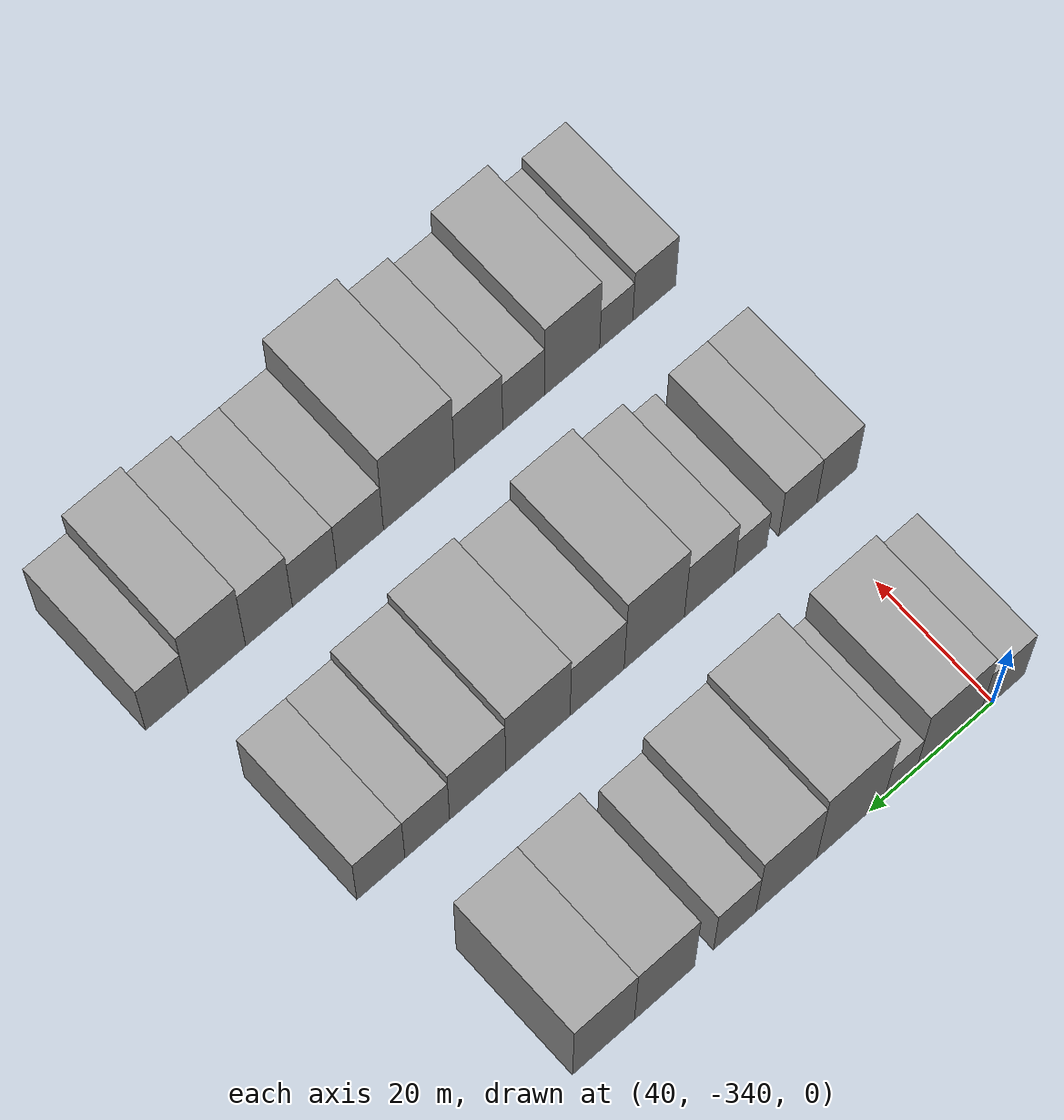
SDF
<sdf version="1.6">
 <world name="default">
  <model name="building_1">
   <static>1</static>
   <pose>50.0000 -341.4122 0 0.000000 0.000000 0.000000</pose>
   <link name="link">
    <pose>0 0 7.50 0 0 0</pose>
    <collision name="collision"><geometry><box><size>20.0000 7.1757 15.0000</size></box></geometry></collision>
    <visual name="visual">
     <cast_shadows>0</cast_shadows>
     <geometry><box><size>20.0000 7.1757 15.0000</size></box></geometry>
     <material>
      <script>
       <uri>model://grey_wall/materials/scripts</uri>
       <uri>model://grey_wall/materials/textures</uri>
       <name>vrc/grey_wall</name>
      </script>
     </material>
    </visual>
   </link>
  </model>
  <model name="building_2">
   <static>1</static>
   <pose>50.0000 -332.6353 0 0.000000 0.000000 0.000000</pose>
   <link name="link">
    <pose>0 0 10.50 0 0 0</pose>
    <collision name="collision"><geometry><box><size>20.0000 10.3781 21.0000</size></box></geometry></collision>
    <visual name="visual">
     <cast_shadows>0</cast_shadows>
     <geometry><box><size>20.0000 10.3781 21.0000</size></box></geometry>
     <material>
      <script>
       <uri>model://grey_wall/materials/scripts</uri>
       <uri>model://grey_wall/materials/textures</uri>
       <name>vrc/grey_wall</name>
      </script>
     </material>
    </visual>
   </link>
  </model>
  <model name="building_3">
   <static>1</static>
   <pose>50.0000 -324.8922 0 0.000000 0.000000 0.000000</pose>
   <link name="link">
    <pose>0 0 6.00 0 0 0</pose>
    <collision name="collision"><geometry><box><size>20.0000 5.1081 12.0000</size></box></geometry></collision>
    <visual name="visual">
     <cast_shadows>0</cast_shadows>
     <geometry><box><size>20.0000 5.1081 12.0000</size></box></geometry>
     <material>
      <script>
       <uri>model://grey_wall/materials/scripts</uri>
       <uri>model://grey_wall/materials/textures</uri>
       <name>vrc/grey_wall</name>
      </script>
     </material>
    </visual>
   </link>
  </model>
  <model name="building_4">
   <static>1</static>
   <pose>50.0000 -316.9242 0 0.000000 0.000000 0.000000</pose>
   <link name="link">
    <pose>0 0 12.00 0 0 0</pose>
    <collision name="collision"><geometry><box><size>20.0000 10.8280 24.0000</size></box></geometry></collision>
    <visual name="visual">
     <cast_shadows>0</cast_shadows>
     <geometry><box><size>20.0000 10.8280 24.0000</size></box></geometry>
     <material>
      <script>
       <uri>model://grey_wall/materials/scripts</uri>
       <uri>model://grey_wall/materials/textures</uri>
       <name>vrc/grey_wall</name>
      </script>
     </material>
    </visual>
   </link>
  </model>
  <model name="building_5">
   <static>1</static>
   <pose>50.0000 -306.6787 0 0.000000 0.000000 0.000000</pose>
   <link name="link">
    <pose>0 0 10.50 0 0 0</pose>
    <collision name="collision"><geometry><box><size>20.0000 9.6630 21.0000</size></box></geometry></collision>
    <visual name="visual">
     <cast_shadows>0</cast_shadows>
     <geometry><box><size>20.0000 9.6630 21.0000</size></box></geometry>
     <material>
      <script>
       <uri>model://grey_wall/materials/scripts</uri>
       <uri>model://grey_wall/materials/textures</uri>
       <name>vrc/grey_wall</name>
      </script>
     </material>
    </visual>
   </link>
  </model>
  <model name="building_6">
   <static>1</static>
   <pose>50.0000 -298.5172 0 0.000000 0.000000 0.000000</pose>
   <link name="link">
    <pose>0 0 7.50 0 0 0</pose>
    <collision name="collision"><geometry><box><size>20.0000 6.6600 15.0000</size></box></geometry></collision>
    <visual name="visual">
     <cast_shadows>0</cast_shadows>
     <geometry><box><size>20.0000 6.6600 15.0000</size></box></geometry>
     <material>
      <script>
       <uri>model://grey_wall/materials/scripts</uri>
       <uri>model://grey_wall/materials/textures</uri>
       <name>vrc/grey_wall</name>
      </script>
     </material>
    </visual>
   </link>
  </model>
  <model name="building_7">
   <static>1</static>
   <pose>50.0000 -287.5001 0 0.000000 0.000000 0.000000</pose>
   <link name="link">
    <pose>0 0 10.50 0 0 0</pose>
    <collision name="collision"><geometry><box><size>20.0000 9.3741 21.0000</size></box></geometry></collision>
    <visual name="visual">
     <cast_shadows>0</cast_shadows>
     <geometry><box><size>20.0000 9.3741 21.0000</size></box></geometry>
     <material>
      <script>
       <uri>model://grey_wall/materials/scripts</uri>
       <uri>model://grey_wall/materials/textures</uri>
       <name>vrc/grey_wall</name>
      </script>
     </material>
    </visual>
   </link>
  </model>
  <model name="building_8">
   <static>1</static>
   <pose>50.0000 -278.0245 0 0.000000 0.000000 0.000000</pose>
   <link name="link">
    <pose>0 0 10.50 0 0 0</pose>
    <collision name="collision"><geometry><box><size>20.0000 9.5772 21.0000</size></box></geometry></collision>
    <visual name="visual">
     <cast_shadows>0</cast_shadows>
     <geometry><box><size>20.0000 9.5772 21.0000</size></box></geometry>
     <material>
      <script>
       <uri>model://grey_wall/materials/scripts</uri>
       <uri>model://grey_wall/materials/textures</uri>
       <name>vrc/grey_wall</name>
      </script>
     </material>
    </visual>
   </link>
  </model>
  <model name="building_76">
   <static>1</static>
   <pose>82.0000 -344.7429 0 0.000000 0.000000 0.000000</pose>
   <link name="link">
    <pose>0 0 7.50 0 0 0</pose>
    <collision name="collision"><geometry><box><size>20.0000 6.5141 15.0000</size></box></geometry></collision>
    <visual name="visual">
     <cast_shadows>0</cast_shadows>
     <geometry><box><size>20.0000 6.5141 15.0000</size></box></geometry>
     <material>
      <script>
       <uri>model://grey_wall/materials/scripts</uri>
       <uri>model://grey_wall/materials/textures</uri>
       <name>vrc/grey_wall</name>
      </script>
     </material>
    </visual>
   </link>
  </model>
  <model name="building_77">
   <static>1</static>
   <pose>82.0000 -338.4000 0 0.000000 0.000000 0.000000</pose>
   <link name="link">
    <pose>0 0 7.50 0 0 0</pose>
    <collision name="collision"><geometry><box><size>20.0000 6.1718 15.0000</size></box></geometry></collision>
    <visual name="visual">
     <cast_shadows>0</cast_shadows>
     <geometry><box><size>20.0000 6.1718 15.0000</size></box></geometry>
     <material>
      <script>
       <uri>model://grey_wall/materials/scripts</uri>
       <uri>model://grey_wall/materials/textures</uri>
       <name>vrc/grey_wall</name>
      </script>
     </material>
    </visual>
   </link>
  </model>
  <model name="building_78">
   <static>1</static>
   <pose>82.0000 -330.6525 0 0.000000 0.000000 0.000000</pose>
   <link name="link">
    <pose>0 0 6.00 0 0 0</pose>
    <collision name="collision"><geometry><box><size>20.0000 5.3231 12.0000</size></box></geometry></collision>
    <visual name="visual">
     <cast_shadows>0</cast_shadows>
     <geometry><box><size>20.0000 5.3231 12.0000</size></box></geometry>
     <material>
      <script>
       <uri>model://grey_wall/materials/scripts</uri>
       <uri>model://grey_wall/materials/textures</uri>
       <name>vrc/grey_wall</name>
      </script>
     </material>
    </visual>
   </link>
  </model>
  <model name="building_79">
   <static>1</static>
   <pose>82.0000 -324.0066 0 0.000000 0.000000 0.000000</pose>
   <link name="link">
    <pose>0 0 9.00 0 0 0</pose>
    <collision name="collision"><geometry><box><size>20.0000 7.9687 18.0000</size></box></geometry></collision>
    <visual name="visual">
     <cast_shadows>0</cast_shadows>
     <geometry><box><size>20.0000 7.9687 18.0000</size></box></geometry>
     <material>
      <script>
       <uri>model://grey_wall/materials/scripts</uri>
       <uri>model://grey_wall/materials/textures</uri>
       <name>vrc/grey_wall</name>
      </script>
     </material>
    </visual>
   </link>
  </model>
  <model name="building_80">
   <static>1</static>
   <pose>82.0000 -315.2025 0 0.000000 0.000000 0.000000</pose>
   <link name="link">
    <pose>0 0 12.00 0 0 0</pose>
    <collision name="collision"><geometry><box><size>20.0000 9.6396 24.0000</size></box></geometry></collision>
    <visual name="visual">
     <cast_shadows>0</cast_shadows>
     <geometry><box><size>20.0000 9.6396 24.0000</size></box></geometry>
     <material>
      <script>
       <uri>model://grey_wall/materials/scripts</uri>
       <uri>model://grey_wall/materials/textures</uri>
       <name>vrc/grey_wall</name>
      </script>
     </material>
    </visual>
   </link>
  </model>
  <model name="building_81">
   <static>1</static>
   <pose>82.0000 -306.0890 0 0.000000 0.000000 0.000000</pose>
   <link name="link">
    <pose>0 0 9.00 0 0 0</pose>
    <collision name="collision"><geometry><box><size>20.0000 8.5875 18.0000</size></box></geometry></collision>
    <visual name="visual">
     <cast_shadows>0</cast_shadows>
     <geometry><box><size>20.0000 8.5875 18.0000</size></box></geometry>
     <material>
      <script>
       <uri>model://grey_wall/materials/scripts</uri>
       <uri>model://grey_wall/materials/textures</uri>
       <name>vrc/grey_wall</name>
      </script>
     </material>
    </visual>
   </link>
  </model>
  <model name="building_82">
   <static>1</static>
   <pose>82.0000 -296.7277 0 0.000000 0.000000 0.000000</pose>
   <link name="link">
    <pose>0 0 10.50 0 0 0</pose>
    <collision name="collision"><geometry><box><size>20.0000 10.1350 21.0000</size></box></geometry></collision>
    <visual name="visual">
     <cast_shadows>0</cast_shadows>
     <geometry><box><size>20.0000 10.1350 21.0000</size></box></geometry>
     <material>
      <script>
       <uri>model://grey_wall/materials/scripts</uri>
       <uri>model://grey_wall/materials/textures</uri>
       <name>vrc/grey_wall</name>
      </script>
     </material>
    </visual>
   </link>
  </model>
  <model name="building_83">
   <static>1</static>
   <pose>82.0000 -287.2749 0 0.000000 0.000000 0.000000</pose>
   <link name="link">
    <pose>0 0 9.00 0 0 0</pose>
    <collision name="collision"><geometry><box><size>20.0000 8.7707 18.0000</size></box></geometry></collision>
    <visual name="visual">
     <cast_shadows>0</cast_shadows>
     <geometry><box><size>20.0000 8.7707 18.0000</size></box></geometry>
     <material>
      <script>
       <uri>model://grey_wall/materials/scripts</uri>
       <uri>model://grey_wall/materials/textures</uri>
       <name>vrc/grey_wall</name>
      </script>
     </material>
    </visual>
   </link>
  </model>
  <model name="building_84">
   <static>1</static>
   <pose>82.0000 -279.4151 0 0.000000 0.000000 0.000000</pose>
   <link name="link">
    <pose>0 0 7.50 0 0 0</pose>
    <collision name="collision"><geometry><box><size>20.0000 6.9489 15.0000</size></box></geometry></collision>
    <visual name="visual">
     <cast_shadows>0</cast_shadows>
     <geometry><box><size>20.0000 6.9489 15.0000</size></box></geometry>
     <material>
      <script>
       <uri>model://grey_wall/materials/scripts</uri>
       <uri>model://grey_wall/materials/textures</uri>
       <name>vrc/grey_wall</name>
      </script>
     </material>
    </visual>
   </link>
  </model>
  <model name="building_85">
   <static>1</static>
   <pose>82.0000 -272.2256 0 0.000000 0.000000 0.000000</pose>
   <link name="link">
    <pose>0 0 7.50 0 0 0</pose>
    <collision name="collision"><geometry><box><size>20.0000 7.4301 15.0000</size></box></geometry></collision>
    <visual name="visual">
     <cast_shadows>0</cast_shadows>
     <geometry><box><size>20.0000 7.4301 15.0000</size></box></geometry>
     <material>
      <script>
       <uri>model://grey_wall/materials/scripts</uri>
       <uri>model://grey_wall/materials/textures</uri>
       <name>vrc/grey_wall</name>
      </script>
     </material>
    </visual>
   </link>
  </model>
  <model name="building_154">
   <static>1</static>
   <pose>114.0000 -344.4842 0 0.000000 0.000000 0.000000</pose>
   <link name="link">
    <pose>0 0 7.50 0 0 0</pose>
    <collision name="collision"><geometry><box><size>20.0000 7.0316 15.0000</size></box></geometry></collision>
    <visual name="visual">
     <cast_shadows>0</cast_shadows>
     <geometry><box><size>20.0000 7.0316 15.0000</size></box></geometry>
     <material>
      <script>
       <uri>model://grey_wall/materials/scripts</uri>
       <uri>model://grey_wall/materials/textures</uri>
       <name>vrc/grey_wall</name>
      </script>
     </material>
    </visual>
   </link>
  </model>
  <model name="building_155">
   <static>1</static>
   <pose>114.0000 -338.2651 0 0.000000 0.000000 0.000000</pose>
   <link name="link">
    <pose>0 0 6.00 0 0 0</pose>
    <collision name="collision"><geometry><box><size>20.0000 5.4066 12.0000</size></box></geometry></collision>
    <visual name="visual">
     <cast_shadows>0</cast_shadows>
     <geometry><box><size>20.0000 5.4066 12.0000</size></box></geometry>
     <material>
      <script>
       <uri>model://grey_wall/materials/scripts</uri>
       <uri>model://grey_wall/materials/textures</uri>
       <name>vrc/grey_wall</name>
      </script>
     </material>
    </visual>
   </link>
  </model>
  <model name="building_156">
   <static>1</static>
   <pose>114.0000 -331.0794 0 0.000000 0.000000 0.000000</pose>
   <link name="link">
    <pose>0 0 10.50 0 0 0</pose>
    <collision name="collision"><geometry><box><size>20.0000 8.9648 21.0000</size></box></geometry></collision>
    <visual name="visual">
     <cast_shadows>0</cast_shadows>
     <geometry><box><size>20.0000 8.9648 21.0000</size></box></geometry>
     <material>
      <script>
       <uri>model://grey_wall/materials/scripts</uri>
       <uri>model://grey_wall/materials/textures</uri>
       <name>vrc/grey_wall</name>
      </script>
     </material>
    </visual>
   </link>
  </model>
  <model name="building_157">
   <static>1</static>
   <pose>114.0000 -323.2217 0 0.000000 0.000000 0.000000</pose>
   <link name="link">
    <pose>0 0 7.50 0 0 0</pose>
    <collision name="collision"><geometry><box><size>20.0000 6.7507 15.0000</size></box></geometry></collision>
    <visual name="visual">
     <cast_shadows>0</cast_shadows>
     <geometry><box><size>20.0000 6.7507 15.0000</size></box></geometry>
     <material>
      <script>
       <uri>model://grey_wall/materials/scripts</uri>
       <uri>model://grey_wall/materials/textures</uri>
       <name>vrc/grey_wall</name>
      </script>
     </material>
    </visual>
   </link>
  </model>
  <model name="building_158">
   <static>1</static>
   <pose>114.0000 -315.9867 0 0.000000 0.000000 0.000000</pose>
   <link name="link">
    <pose>0 0 9.00 0 0 0</pose>
    <collision name="collision"><geometry><box><size>20.0000 7.7193 18.0000</size></box></geometry></collision>
    <visual name="visual">
     <cast_shadows>0</cast_shadows>
     <geometry><box><size>20.0000 7.7193 18.0000</size></box></geometry>
     <material>
      <script>
       <uri>model://grey_wall/materials/scripts</uri>
       <uri>model://grey_wall/materials/textures</uri>
       <name>vrc/grey_wall</name>
      </script>
     </material>
    </visual>
   </link>
  </model>
  <model name="building_159">
   <static>1</static>
   <pose>114.0000 -306.4549 0 0.000000 0.000000 0.000000</pose>
   <link name="link">
    <pose>0 0 12.00 0 0 0</pose>
    <collision name="collision"><geometry><box><size>20.0000 11.3443 24.0000</size></box></geometry></collision>
    <visual name="visual">
     <cast_shadows>0</cast_shadows>
     <geometry><box><size>20.0000 11.3443 24.0000</size></box></geometry>
     <material>
      <script>
       <uri>model://grey_wall/materials/scripts</uri>
       <uri>model://grey_wall/materials/textures</uri>
       <name>vrc/grey_wall</name>
      </script>
     </material>
    </visual>
   </link>
  </model>
  <model name="building_160">
   <static>1</static>
   <pose>114.0000 -297.0921 0 0.000000 0.000000 0.000000</pose>
   <link name="link">
    <pose>0 0 7.50 0 0 0</pose>
    <collision name="collision"><geometry><box><size>20.0000 7.3812 15.0000</size></box></geometry></collision>
    <visual name="visual">
     <cast_shadows>0</cast_shadows>
     <geometry><box><size>20.0000 7.3812 15.0000</size></box></geometry>
     <material>
      <script>
       <uri>model://grey_wall/materials/scripts</uri>
       <uri>model://grey_wall/materials/textures</uri>
       <name>vrc/grey_wall</name>
      </script>
     </material>
    </visual>
   </link>
  </model>
  <model name="building_161">
   <static>1</static>
   <pose>114.0000 -289.9155 0 0.000000 0.000000 0.000000</pose>
   <link name="link">
    <pose>0 0 7.50 0 0 0</pose>
    <collision name="collision"><geometry><box><size>20.0000 6.9719 15.0000</size></box></geometry></collision>
    <visual name="visual">
     <cast_shadows>0</cast_shadows>
     <geometry><box><size>20.0000 6.9719 15.0000</size></box></geometry>
     <material>
      <script>
       <uri>model://grey_wall/materials/scripts</uri>
       <uri>model://grey_wall/materials/textures</uri>
       <name>vrc/grey_wall</name>
      </script>
     </material>
    </visual>
   </link>
  </model>
  <model name="building_162">
   <static>1</static>
   <pose>114.0000 -282.7675 0 0.000000 0.000000 0.000000</pose>
   <link name="link">
    <pose>0 0 9.00 0 0 0</pose>
    <collision name="collision"><geometry><box><size>20.0000 7.3241 18.0000</size></box></geometry></collision>
    <visual name="visual">
     <cast_shadows>0</cast_shadows>
     <geometry><box><size>20.0000 7.3241 18.0000</size></box></geometry>
     <material>
      <script>
       <uri>model://grey_wall/materials/scripts</uri>
       <uri>model://grey_wall/materials/textures</uri>
       <name>vrc/grey_wall</name>
      </script>
     </material>
    </visual>
   </link>
  </model>
  <model name="building_163">
   <static>1</static>
   <pose>114.0000 -274.6653 0 0.000000 0.000000 0.000000</pose>
   <link name="link">
    <pose>0 0 10.50 0 0 0</pose>
    <collision name="collision"><geometry><box><size>20.0000 8.8803 21.0000</size></box></geometry></collision>
    <visual name="visual">
     <cast_shadows>0</cast_shadows>
     <geometry><box><size>20.0000 8.8803 21.0000</size></box></geometry>
     <material>
      <script>
       <uri>model://grey_wall/materials/scripts</uri>
       <uri>model://grey_wall/materials/textures</uri>
       <name>vrc/grey_wall</name>
      </script>
     </material>
    </visual>
   </link>
  </model>
  <model name="building_164">
   <static>1</static>
   <pose>114.0000 -266.9102 0 0.000000 0.000000 0.000000</pose>
   <link name="link">
    <pose>0 0 7.50 0 0 0</pose>
    <collision name="collision"><geometry><box><size>20.0000 6.6299 15.0000</size></box></geometry></collision>
    <visual name="visual">
     <cast_shadows>0</cast_shadows>
     <geometry><box><size>20.0000 6.6299 15.0000</size></box></geometry>
     <material>
      <script>
       <uri>model://grey_wall/materials/scripts</uri>
       <uri>model://grey_wall/materials/textures</uri>
       <name>vrc/grey_wall</name>
      </script>
     </material>
    </visual>
   </link>
  </model>
 </world>
</sdf>
